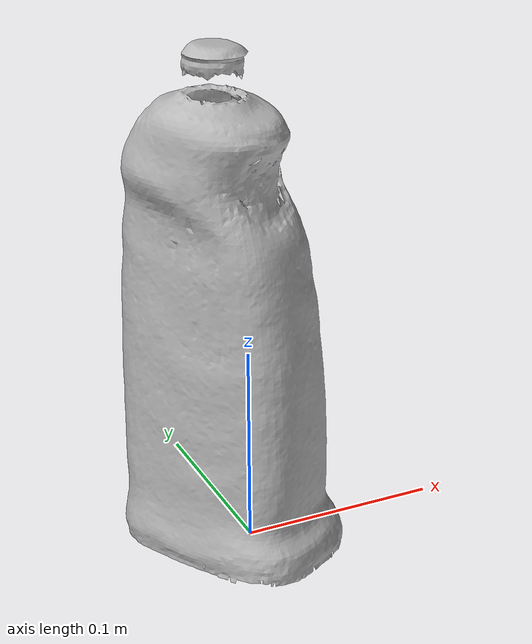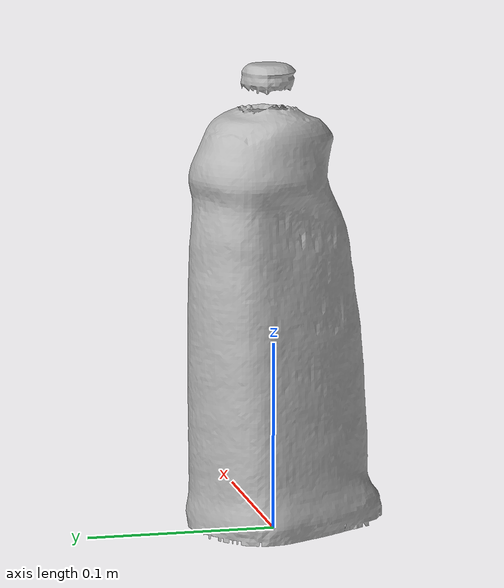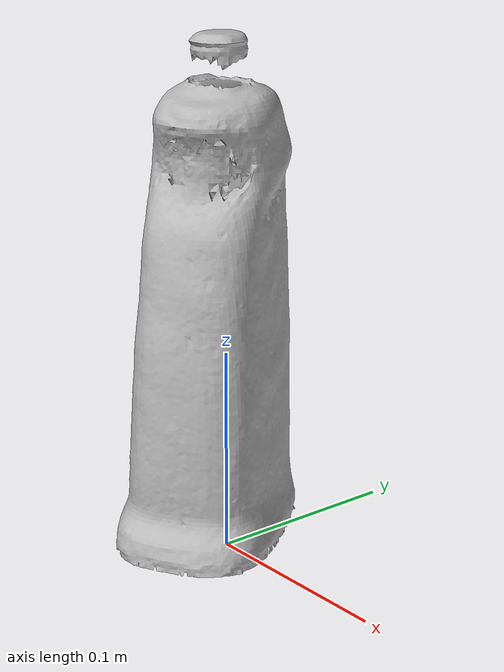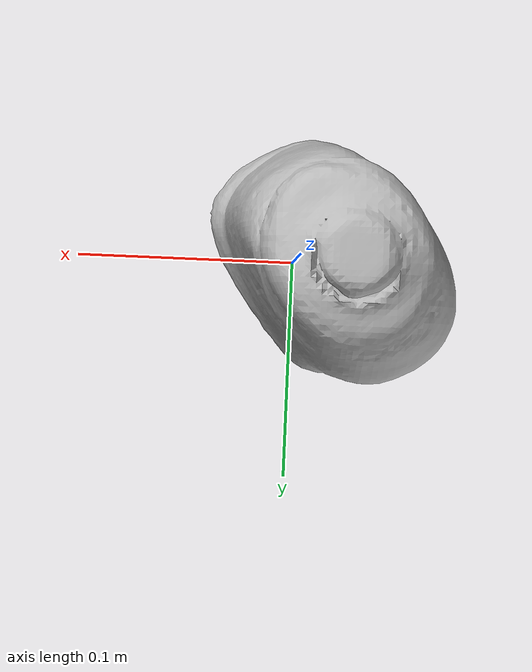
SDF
<?xml version="1.0" ?>
<sdf version="1.4">
  <model name="021_bleach_cleanser">
    <pose>0 0 0  0 0 0</pose>
    <link name="body">
      <inertial>
        <!-- Volume:  1.1362042240e-03 -->
        <mass> 1.0 </mass>
        <!-- Center of mass: -1.3586230000e-02  2.4700300000e-03  1.0601849000e-01 -->
        <pose> -1.3586230000e-02  2.4700300000e-03  1.0601849000e-01 0 0 0 </pose>
        <!-- Inertia matrix -->
        <inertia>
          <ixx>  4.5333640159e-03 </ixx>
          <ixy>  1.4181848843e-04 </ixy>
          <ixz>  7.2448530961e-05 </ixz>
          <iyy>  4.3930578958e-03 </iyy>
          <iyz> -2.2362284899e-04 </iyz>
          <izz>  8.8588268820e-04 </izz>
        </inertia>
      </inertial>
      <visual name="visual">
        <geometry>
          <mesh>
            <uri>model://021_bleach_cleanser/nontextured.stl</uri>
          </mesh>
        </geometry>
      </visual>
      <collision name="collision">
        <geometry>
          <mesh>
            <uri>model://021_bleach_cleanser/nontextured.stl</uri>
          </mesh>
        </geometry>
        <max_contacts>10</max_contacts>
        <surface>
          <friction>
            <ode>
              <mu>0.8</mu>
              <mu2>0.8</mu2>
              <slip1>0</slip1>
              <slip2>0</slip2>
            </ode>
            <torsional>
              <ode/>
            </torsional>
          </friction>
          <contact>
            <ode>
              <kp>1000000.0</kp>
              <kd>1.0</kd>
              <max_vel>0.0</max_vel>
            </ode>
          </contact>
        </surface>
      </collision>
    </link>
  </model>
</sdf>
